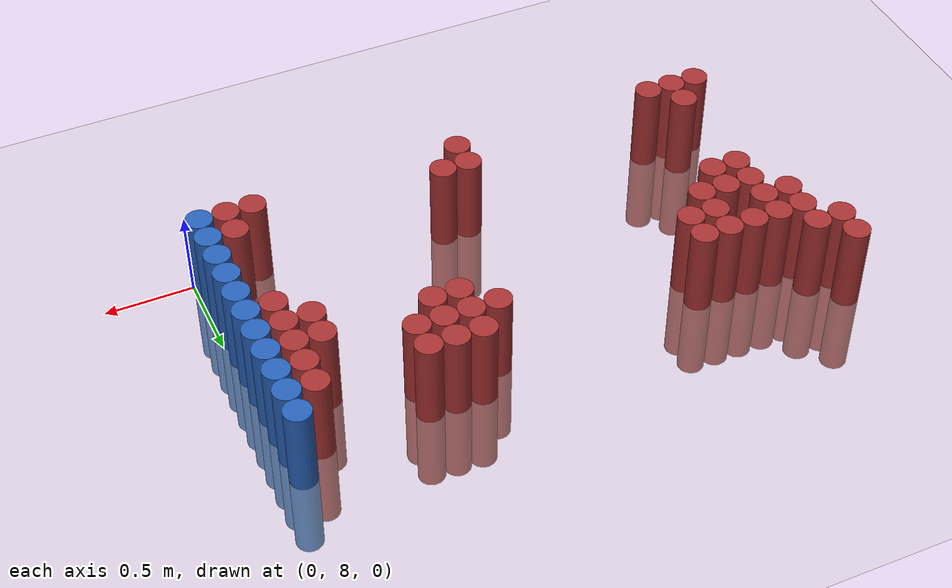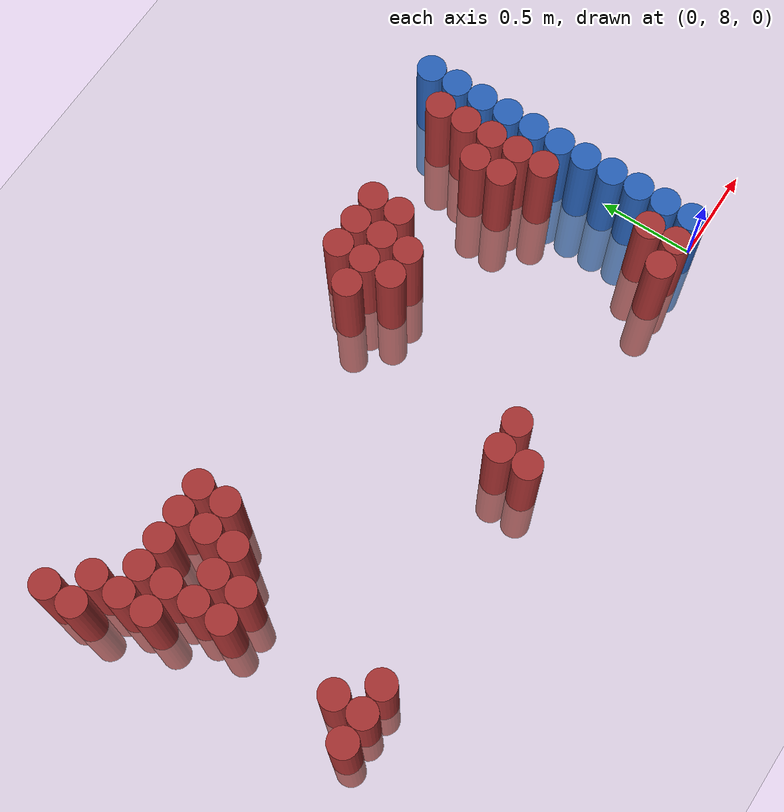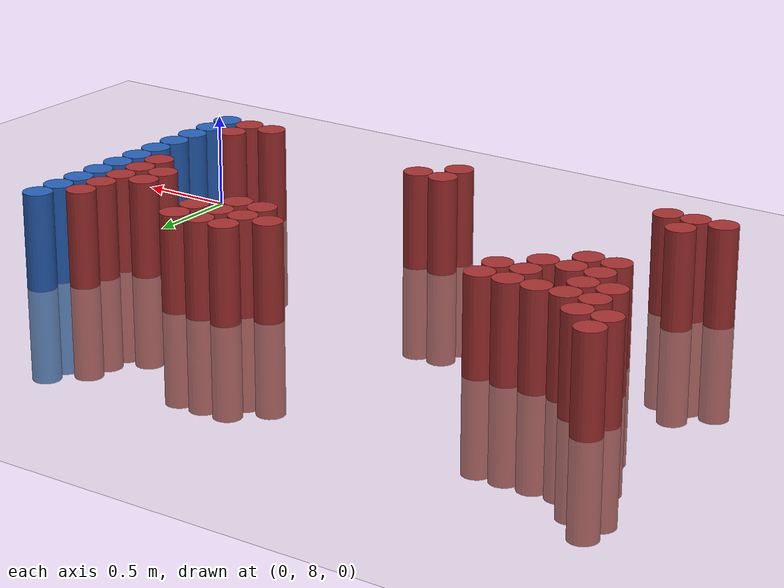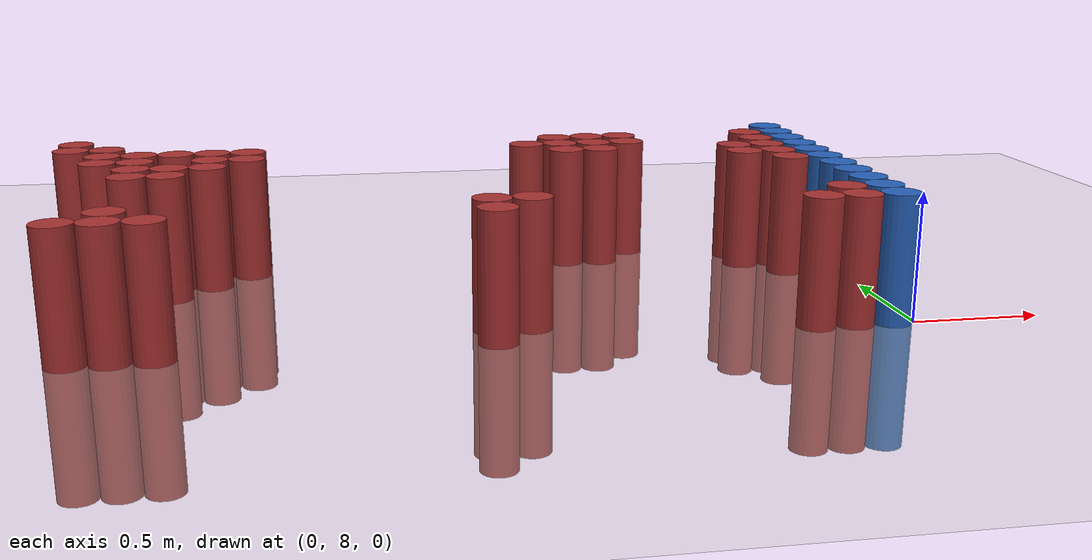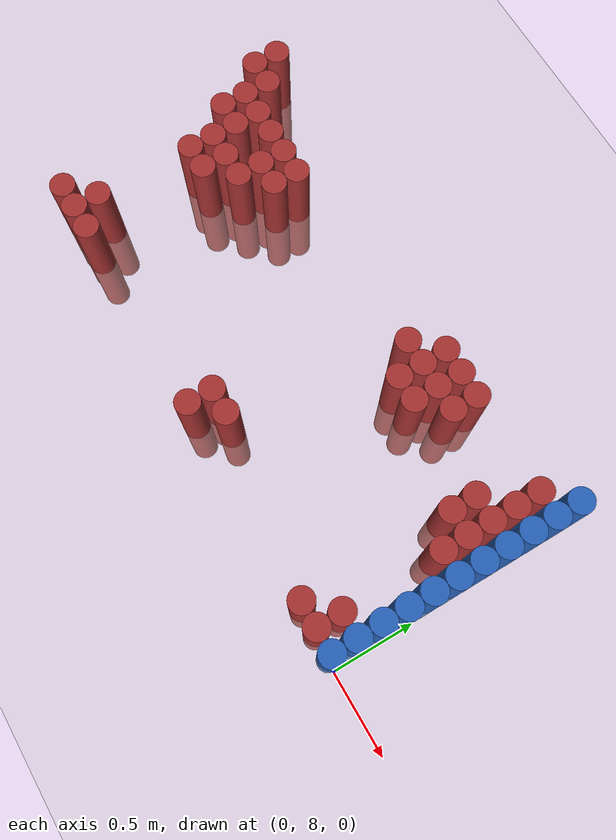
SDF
<sdf version="1.6">
 <world name="default">
  <model name="ground_plane">
   <static>1</static>
   <link name="link">
    <collision name="collision">
     <geometry><plane><normal>0 0 1</normal><size>100 100</size></plane></geometry>
     <surface><friction><ode><mu>100</mu><mu2>50</mu2></ode></friction></surface>
    </collision>
    <visual name="visual">
     <cast_shadows>0</cast_shadows>
     <geometry><plane><normal>0 0 1</normal><size>100 100</size></plane></geometry>
     <material>
      <script><uri>file://media/materials/scripts/gazebo.material</uri><name>Gazebo/Grey</name></script>
     </material>
    </visual>
   </link>
  </model>
  <model name="unit_cylinder_183">
   <static>1</static>
   <pose>-3.225000 9.375000 0.000000 0.000000 0.000000 0.000000</pose>
   <link name="link">
    <inertial>
     <mass>1</mass>
     <inertia><ixx>0.145833</ixx><ixy>0</ixy><ixz>0</ixz><iyy>0.145833</iyy><iyz>0</iyz><izz>0.125</izz></inertia>
    </inertial>
    <collision name="collision">
     <geometry><cylinder><radius>0.075000</radius><length>1</length></cylinder></geometry>
    </collision>
    <visual name="visual">
     <geometry><cylinder><radius>0.075000</radius><length>1</length></cylinder></geometry>
     <material>
      <ambient>0.648000 0.192000 0.192000 1</ambient>
      <diffuse>0.648000 0.192000 0.192000 1</diffuse>
     </material>
     <material>
      <script><name>Gazebo/Grey</name><uri>file://media/materials/scripts/gazebo.material</uri></script>
     </material>
    </visual>
   </link>
  </model>
  <model name="unit_cylinder_184">
   <static>1</static>
   <pose>-3.225000 9.525000 0.000000 0.000000 0.000000 0.000000</pose>
   <link name="link">
    <inertial>
     <mass>1</mass>
     <inertia><ixx>0.145833</ixx><ixy>0</ixy><ixz>0</ixz><iyy>0.145833</iyy><iyz>0</iyz><izz>0.125</izz></inertia>
    </inertial>
    <collision name="collision">
     <geometry><cylinder><radius>0.075000</radius><length>1</length></cylinder></geometry>
    </collision>
    <visual name="visual">
     <geometry><cylinder><radius>0.075000</radius><length>1</length></cylinder></geometry>
     <material>
      <ambient>0.648000 0.192000 0.192000 1</ambient>
      <diffuse>0.648000 0.192000 0.192000 1</diffuse>
     </material>
     <material>
      <script><name>Gazebo/Grey</name><uri>file://media/materials/scripts/gazebo.material</uri></script>
     </material>
    </visual>
   </link>
  </model>
  <model name="unit_cylinder_186">
   <static>1</static>
   <pose>-3.075000 8.025000 0.000000 0.000000 0.000000 0.000000</pose>
   <link name="link">
    <inertial>
     <mass>1</mass>
     <inertia><ixx>0.145833</ixx><ixy>0</ixy><ixz>0</ixz><iyy>0.145833</iyy><iyz>0</iyz><izz>0.125</izz></inertia>
    </inertial>
    <collision name="collision">
     <geometry><cylinder><radius>0.075000</radius><length>1</length></cylinder></geometry>
    </collision>
    <visual name="visual">
     <geometry><cylinder><radius>0.075000</radius><length>1</length></cylinder></geometry>
     <material>
      <ambient>0.648000 0.192000 0.192000 1</ambient>
      <diffuse>0.648000 0.192000 0.192000 1</diffuse>
     </material>
     <material>
      <script><name>Gazebo/Grey</name><uri>file://media/materials/scripts/gazebo.material</uri></script>
     </material>
    </visual>
   </link>
  </model>
  <model name="unit_cylinder_187">
   <static>1</static>
   <pose>-3.075000 9.075000 0.000000 0.000000 0.000000 0.000000</pose>
   <link name="link">
    <inertial>
     <mass>1</mass>
     <inertia><ixx>0.145833</ixx><ixy>0</ixy><ixz>0</ixz><iyy>0.145833</iyy><iyz>0</iyz><izz>0.125</izz></inertia>
    </inertial>
    <collision name="collision">
     <geometry><cylinder><radius>0.075000</radius><length>1</length></cylinder></geometry>
    </collision>
    <visual name="visual">
     <geometry><cylinder><radius>0.075000</radius><length>1</length></cylinder></geometry>
     <material>
      <ambient>0.648000 0.192000 0.192000 1</ambient>
      <diffuse>0.648000 0.192000 0.192000 1</diffuse>
     </material>
     <material>
      <script><name>Gazebo/Grey</name><uri>file://media/materials/scripts/gazebo.material</uri></script>
     </material>
    </visual>
   </link>
  </model>
  <model name="unit_cylinder_188">
   <static>1</static>
   <pose>-3.075000 9.225000 0.000000 0.000000 0.000000 0.000000</pose>
   <link name="link">
    <inertial>
     <mass>1</mass>
     <inertia><ixx>0.145833</ixx><ixy>0</ixy><ixz>0</ixz><iyy>0.145833</iyy><iyz>0</iyz><izz>0.125</izz></inertia>
    </inertial>
    <collision name="collision">
     <geometry><cylinder><radius>0.075000</radius><length>1</length></cylinder></geometry>
    </collision>
    <visual name="visual">
     <geometry><cylinder><radius>0.075000</radius><length>1</length></cylinder></geometry>
     <material>
      <ambient>0.648000 0.192000 0.192000 1</ambient>
      <diffuse>0.648000 0.192000 0.192000 1</diffuse>
     </material>
     <material>
      <script><name>Gazebo/Grey</name><uri>file://media/materials/scripts/gazebo.material</uri></script>
     </material>
    </visual>
   </link>
  </model>
  <model name="unit_cylinder_189">
   <static>1</static>
   <pose>-3.075000 9.375000 0.000000 0.000000 0.000000 0.000000</pose>
   <link name="link">
    <inertial>
     <mass>1</mass>
     <inertia><ixx>0.145833</ixx><ixy>0</ixy><ixz>0</ixz><iyy>0.145833</iyy><iyz>0</iyz><izz>0.125</izz></inertia>
    </inertial>
    <collision name="collision">
     <geometry><cylinder><radius>0.075000</radius><length>1</length></cylinder></geometry>
    </collision>
    <visual name="visual">
     <geometry><cylinder><radius>0.075000</radius><length>1</length></cylinder></geometry>
     <material>
      <ambient>0.648000 0.192000 0.192000 1</ambient>
      <diffuse>0.648000 0.192000 0.192000 1</diffuse>
     </material>
     <material>
      <script><name>Gazebo/Grey</name><uri>file://media/materials/scripts/gazebo.material</uri></script>
     </material>
    </visual>
   </link>
  </model>
  <model name="unit_cylinder_191">
   <static>1</static>
   <pose>-2.925000 8.025000 0.000000 0.000000 0.000000 0.000000</pose>
   <link name="link">
    <inertial>
     <mass>1</mass>
     <inertia><ixx>0.145833</ixx><ixy>0</ixy><ixz>0</ixz><iyy>0.145833</iyy><iyz>0</iyz><izz>0.125</izz></inertia>
    </inertial>
    <collision name="collision">
     <geometry><cylinder><radius>0.075000</radius><length>1</length></cylinder></geometry>
    </collision>
    <visual name="visual">
     <geometry><cylinder><radius>0.075000</radius><length>1</length></cylinder></geometry>
     <material>
      <ambient>0.648000 0.192000 0.192000 1</ambient>
      <diffuse>0.648000 0.192000 0.192000 1</diffuse>
     </material>
     <material>
      <script><name>Gazebo/Grey</name><uri>file://media/materials/scripts/gazebo.material</uri></script>
     </material>
    </visual>
   </link>
  </model>
  <model name="unit_cylinder_192">
   <static>1</static>
   <pose>-2.925000 8.175000 0.000000 0.000000 0.000000 0.000000</pose>
   <link name="link">
    <inertial>
     <mass>1</mass>
     <inertia><ixx>0.145833</ixx><ixy>0</ixy><ixz>0</ixz><iyy>0.145833</iyy><iyz>0</iyz><izz>0.125</izz></inertia>
    </inertial>
    <collision name="collision">
     <geometry><cylinder><radius>0.075000</radius><length>1</length></cylinder></geometry>
    </collision>
    <visual name="visual">
     <geometry><cylinder><radius>0.075000</radius><length>1</length></cylinder></geometry>
     <material>
      <ambient>0.648000 0.192000 0.192000 1</ambient>
      <diffuse>0.648000 0.192000 0.192000 1</diffuse>
     </material>
     <material>
      <script><name>Gazebo/Grey</name><uri>file://media/materials/scripts/gazebo.material</uri></script>
     </material>
    </visual>
   </link>
  </model>
  <model name="unit_cylinder_193">
   <static>1</static>
   <pose>-2.925000 8.775000 0.000000 0.000000 0.000000 0.000000</pose>
   <link name="link">
    <inertial>
     <mass>1</mass>
     <inertia><ixx>0.145833</ixx><ixy>0</ixy><ixz>0</ixz><iyy>0.145833</iyy><iyz>0</iyz><izz>0.125</izz></inertia>
    </inertial>
    <collision name="collision">
     <geometry><cylinder><radius>0.075000</radius><length>1</length></cylinder></geometry>
    </collision>
    <visual name="visual">
     <geometry><cylinder><radius>0.075000</radius><length>1</length></cylinder></geometry>
     <material>
      <ambient>0.648000 0.192000 0.192000 1</ambient>
      <diffuse>0.648000 0.192000 0.192000 1</diffuse>
     </material>
     <material>
      <script><name>Gazebo/Grey</name><uri>file://media/materials/scripts/gazebo.material</uri></script>
     </material>
    </visual>
   </link>
  </model>
  <model name="unit_cylinder_194">
   <static>1</static>
   <pose>-2.925000 8.925000 0.000000 0.000000 0.000000 0.000000</pose>
   <link name="link">
    <inertial>
     <mass>1</mass>
     <inertia><ixx>0.145833</ixx><ixy>0</ixy><ixz>0</ixz><iyy>0.145833</iyy><iyz>0</iyz><izz>0.125</izz></inertia>
    </inertial>
    <collision name="collision">
     <geometry><cylinder><radius>0.075000</radius><length>1</length></cylinder></geometry>
    </collision>
    <visual name="visual">
     <geometry><cylinder><radius>0.075000</radius><length>1</length></cylinder></geometry>
     <material>
      <ambient>0.648000 0.192000 0.192000 1</ambient>
      <diffuse>0.648000 0.192000 0.192000 1</diffuse>
     </material>
     <material>
      <script><name>Gazebo/Grey</name><uri>file://media/materials/scripts/gazebo.material</uri></script>
     </material>
    </visual>
   </link>
  </model>
  <model name="unit_cylinder_195">
   <static>1</static>
   <pose>-2.925000 9.075000 0.000000 0.000000 0.000000 0.000000</pose>
   <link name="link">
    <inertial>
     <mass>1</mass>
     <inertia><ixx>0.145833</ixx><ixy>0</ixy><ixz>0</ixz><iyy>0.145833</iyy><iyz>0</iyz><izz>0.125</izz></inertia>
    </inertial>
    <collision name="collision">
     <geometry><cylinder><radius>0.075000</radius><length>1</length></cylinder></geometry>
    </collision>
    <visual name="visual">
     <geometry><cylinder><radius>0.075000</radius><length>1</length></cylinder></geometry>
     <material>
      <ambient>0.648000 0.192000 0.192000 1</ambient>
      <diffuse>0.648000 0.192000 0.192000 1</diffuse>
     </material>
     <material>
      <script><name>Gazebo/Grey</name><uri>file://media/materials/scripts/gazebo.material</uri></script>
     </material>
    </visual>
   </link>
  </model>
  <model name="unit_cylinder_196">
   <static>1</static>
   <pose>-2.925000 9.225000 0.000000 0.000000 0.000000 0.000000</pose>
   <link name="link">
    <inertial>
     <mass>1</mass>
     <inertia><ixx>0.145833</ixx><ixy>0</ixy><ixz>0</ixz><iyy>0.145833</iyy><iyz>0</iyz><izz>0.125</izz></inertia>
    </inertial>
    <collision name="collision">
     <geometry><cylinder><radius>0.075000</radius><length>1</length></cylinder></geometry>
    </collision>
    <visual name="visual">
     <geometry><cylinder><radius>0.075000</radius><length>1</length></cylinder></geometry>
     <material>
      <ambient>0.648000 0.192000 0.192000 1</ambient>
      <diffuse>0.648000 0.192000 0.192000 1</diffuse>
     </material>
     <material>
      <script><name>Gazebo/Grey</name><uri>file://media/materials/scripts/gazebo.material</uri></script>
     </material>
    </visual>
   </link>
  </model>
  <model name="unit_cylinder_197">
   <static>1</static>
   <pose>-2.775000 8.025000 0.000000 0.000000 0.000000 0.000000</pose>
   <link name="link">
    <inertial>
     <mass>1</mass>
     <inertia><ixx>0.145833</ixx><ixy>0</ixy><ixz>0</ixz><iyy>0.145833</iyy><iyz>0</iyz><izz>0.125</izz></inertia>
    </inertial>
    <collision name="collision">
     <geometry><cylinder><radius>0.075000</radius><length>1</length></cylinder></geometry>
    </collision>
    <visual name="visual">
     <geometry><cylinder><radius>0.075000</radius><length>1</length></cylinder></geometry>
     <material>
      <ambient>0.648000 0.192000 0.192000 1</ambient>
      <diffuse>0.648000 0.192000 0.192000 1</diffuse>
     </material>
     <material>
      <script><name>Gazebo/Grey</name><uri>file://media/materials/scripts/gazebo.material</uri></script>
     </material>
    </visual>
   </link>
  </model>
  <model name="unit_cylinder_198">
   <static>1</static>
   <pose>-2.775000 8.775000 0.000000 0.000000 0.000000 0.000000</pose>
   <link name="link">
    <inertial>
     <mass>1</mass>
     <inertia><ixx>0.145833</ixx><ixy>0</ixy><ixz>0</ixz><iyy>0.145833</iyy><iyz>0</iyz><izz>0.125</izz></inertia>
    </inertial>
    <collision name="collision">
     <geometry><cylinder><radius>0.075000</radius><length>1</length></cylinder></geometry>
    </collision>
    <visual name="visual">
     <geometry><cylinder><radius>0.075000</radius><length>1</length></cylinder></geometry>
     <material>
      <ambient>0.648000 0.192000 0.192000 1</ambient>
      <diffuse>0.648000 0.192000 0.192000 1</diffuse>
     </material>
     <material>
      <script><name>Gazebo/Grey</name><uri>file://media/materials/scripts/gazebo.material</uri></script>
     </material>
    </visual>
   </link>
  </model>
  <model name="unit_cylinder_199">
   <static>1</static>
   <pose>-2.775000 8.925000 0.000000 0.000000 0.000000 0.000000</pose>
   <link name="link">
    <inertial>
     <mass>1</mass>
     <inertia><ixx>0.145833</ixx><ixy>0</ixy><ixz>0</ixz><iyy>0.145833</iyy><iyz>0</iyz><izz>0.125</izz></inertia>
    </inertial>
    <collision name="collision">
     <geometry><cylinder><radius>0.075000</radius><length>1</length></cylinder></geometry>
    </collision>
    <visual name="visual">
     <geometry><cylinder><radius>0.075000</radius><length>1</length></cylinder></geometry>
     <material>
      <ambient>0.648000 0.192000 0.192000 1</ambient>
      <diffuse>0.648000 0.192000 0.192000 1</diffuse>
     </material>
     <material>
      <script><name>Gazebo/Grey</name><uri>file://media/materials/scripts/gazebo.material</uri></script>
     </material>
    </visual>
   </link>
  </model>
  <model name="unit_cylinder_200">
   <static>1</static>
   <pose>-2.775000 9.225000 0.000000 0.000000 0.000000 0.000000</pose>
   <link name="link">
    <inertial>
     <mass>1</mass>
     <inertia><ixx>0.145833</ixx><ixy>0</ixy><ixz>0</ixz><iyy>0.145833</iyy><iyz>0</iyz><izz>0.125</izz></inertia>
    </inertial>
    <collision name="collision">
     <geometry><cylinder><radius>0.075000</radius><length>1</length></cylinder></geometry>
    </collision>
    <visual name="visual">
     <geometry><cylinder><radius>0.075000</radius><length>1</length></cylinder></geometry>
     <material>
      <ambient>0.648000 0.192000 0.192000 1</ambient>
      <diffuse>0.648000 0.192000 0.192000 1</diffuse>
     </material>
     <material>
      <script><name>Gazebo/Grey</name><uri>file://media/materials/scripts/gazebo.material</uri></script>
     </material>
    </visual>
   </link>
  </model>
  <model name="unit_cylinder_201">
   <static>1</static>
   <pose>-2.625000 8.925000 0.000000 0.000000 0.000000 0.000000</pose>
   <link name="link">
    <inertial>
     <mass>1</mass>
     <inertia><ixx>0.145833</ixx><ixy>0</ixy><ixz>0</ixz><iyy>0.145833</iyy><iyz>0</iyz><izz>0.125</izz></inertia>
    </inertial>
    <collision name="collision">
     <geometry><cylinder><radius>0.075000</radius><length>1</length></cylinder></geometry>
    </collision>
    <visual name="visual">
     <geometry><cylinder><radius>0.075000</radius><length>1</length></cylinder></geometry>
     <material>
      <ambient>0.648000 0.192000 0.192000 1</ambient>
      <diffuse>0.648000 0.192000 0.192000 1</diffuse>
     </material>
     <material>
      <script><name>Gazebo/Grey</name><uri>file://media/materials/scripts/gazebo.material</uri></script>
     </material>
    </visual>
   </link>
  </model>
  <model name="unit_cylinder_202">
   <static>1</static>
   <pose>-2.625000 9.075000 0.000000 0.000000 0.000000 0.000000</pose>
   <link name="link">
    <inertial>
     <mass>1</mass>
     <inertia><ixx>0.145833</ixx><ixy>0</ixy><ixz>0</ixz><iyy>0.145833</iyy><iyz>0</iyz><izz>0.125</izz></inertia>
    </inertial>
    <collision name="collision">
     <geometry><cylinder><radius>0.075000</radius><length>1</length></cylinder></geometry>
    </collision>
    <visual name="visual">
     <geometry><cylinder><radius>0.075000</radius><length>1</length></cylinder></geometry>
     <material>
      <ambient>0.648000 0.192000 0.192000 1</ambient>
      <diffuse>0.648000 0.192000 0.192000 1</diffuse>
     </material>
     <material>
      <script><name>Gazebo/Grey</name><uri>file://media/materials/scripts/gazebo.material</uri></script>
     </material>
    </visual>
   </link>
  </model>
  <model name="unit_cylinder_203">
   <static>1</static>
   <pose>-2.625000 9.225000 0.000000 0.000000 0.000000 0.000000</pose>
   <link name="link">
    <inertial>
     <mass>1</mass>
     <inertia><ixx>0.145833</ixx><ixy>0</ixy><ixz>0</ixz><iyy>0.145833</iyy><iyz>0</iyz><izz>0.125</izz></inertia>
    </inertial>
    <collision name="collision">
     <geometry><cylinder><radius>0.075000</radius><length>1</length></cylinder></geometry>
    </collision>
    <visual name="visual">
     <geometry><cylinder><radius>0.075000</radius><length>1</length></cylinder></geometry>
     <material>
      <ambient>0.648000 0.192000 0.192000 1</ambient>
      <diffuse>0.648000 0.192000 0.192000 1</diffuse>
     </material>
     <material>
      <script><name>Gazebo/Grey</name><uri>file://media/materials/scripts/gazebo.material</uri></script>
     </material>
    </visual>
   </link>
  </model>
  <model name="unit_cylinder_204">
   <static>1</static>
   <pose>-2.475000 9.075000 0.000000 0.000000 0.000000 0.000000</pose>
   <link name="link">
    <inertial>
     <mass>1</mass>
     <inertia><ixx>0.145833</ixx><ixy>0</ixy><ixz>0</ixz><iyy>0.145833</iyy><iyz>0</iyz><izz>0.125</izz></inertia>
    </inertial>
    <collision name="collision">
     <geometry><cylinder><radius>0.075000</radius><length>1</length></cylinder></geometry>
    </collision>
    <visual name="visual">
     <geometry><cylinder><radius>0.075000</radius><length>1</length></cylinder></geometry>
     <material>
      <ambient>0.648000 0.192000 0.192000 1</ambient>
      <diffuse>0.648000 0.192000 0.192000 1</diffuse>
     </material>
     <material>
      <script><name>Gazebo/Grey</name><uri>file://media/materials/scripts/gazebo.material</uri></script>
     </material>
    </visual>
   </link>
  </model>
  <model name="unit_cylinder_205">
   <static>1</static>
   <pose>-2.475000 9.225000 0.000000 0.000000 0.000000 0.000000</pose>
   <link name="link">
    <inertial>
     <mass>1</mass>
     <inertia><ixx>0.145833</ixx><ixy>0</ixy><ixz>0</ixz><iyy>0.145833</iyy><iyz>0</iyz><izz>0.125</izz></inertia>
    </inertial>
    <collision name="collision">
     <geometry><cylinder><radius>0.075000</radius><length>1</length></cylinder></geometry>
    </collision>
    <visual name="visual">
     <geometry><cylinder><radius>0.075000</radius><length>1</length></cylinder></geometry>
     <material>
      <ambient>0.648000 0.192000 0.192000 1</ambient>
      <diffuse>0.648000 0.192000 0.192000 1</diffuse>
     </material>
     <material>
      <script><name>Gazebo/Grey</name><uri>file://media/materials/scripts/gazebo.material</uri></script>
     </material>
    </visual>
   </link>
  </model>
  <model name="unit_cylinder_227">
   <static>1</static>
   <pose>-1.575000 8.025000 0.000000 0.000000 0.000000 0.000000</pose>
   <link name="link">
    <inertial>
     <mass>1</mass>
     <inertia><ixx>0.145833</ixx><ixy>0</ixy><ixz>0</ixz><iyy>0.145833</iyy><iyz>0</iyz><izz>0.125</izz></inertia>
    </inertial>
    <collision name="collision">
     <geometry><cylinder><radius>0.075000</radius><length>1</length></cylinder></geometry>
    </collision>
    <visual name="visual">
     <geometry><cylinder><radius>0.075000</radius><length>1</length></cylinder></geometry>
     <material>
      <ambient>0.648000 0.192000 0.192000 1</ambient>
      <diffuse>0.648000 0.192000 0.192000 1</diffuse>
     </material>
     <material>
      <script><name>Gazebo/Grey</name><uri>file://media/materials/scripts/gazebo.material</uri></script>
     </material>
    </visual>
   </link>
  </model>
  <model name="unit_cylinder_228">
   <static>1</static>
   <pose>-1.575000 8.175000 0.000000 0.000000 0.000000 0.000000</pose>
   <link name="link">
    <inertial>
     <mass>1</mass>
     <inertia><ixx>0.145833</ixx><ixy>0</ixy><ixz>0</ixz><iyy>0.145833</iyy><iyz>0</iyz><izz>0.125</izz></inertia>
    </inertial>
    <collision name="collision">
     <geometry><cylinder><radius>0.075000</radius><length>1</length></cylinder></geometry>
    </collision>
    <visual name="visual">
     <geometry><cylinder><radius>0.075000</radius><length>1</length></cylinder></geometry>
     <material>
      <ambient>0.648000 0.192000 0.192000 1</ambient>
      <diffuse>0.648000 0.192000 0.192000 1</diffuse>
     </material>
     <material>
      <script><name>Gazebo/Grey</name><uri>file://media/materials/scripts/gazebo.material</uri></script>
     </material>
    </visual>
   </link>
  </model>
  <model name="unit_cylinder_232">
   <static>1</static>
   <pose>-1.425000 8.175000 0.000000 0.000000 0.000000 0.000000</pose>
   <link name="link">
    <inertial>
     <mass>1</mass>
     <inertia><ixx>0.145833</ixx><ixy>0</ixy><ixz>0</ixz><iyy>0.145833</iyy><iyz>0</iyz><izz>0.125</izz></inertia>
    </inertial>
    <collision name="collision">
     <geometry><cylinder><radius>0.075000</radius><length>1</length></cylinder></geometry>
    </collision>
    <visual name="visual">
     <geometry><cylinder><radius>0.075000</radius><length>1</length></cylinder></geometry>
     <material>
      <ambient>0.648000 0.192000 0.192000 1</ambient>
      <diffuse>0.648000 0.192000 0.192000 1</diffuse>
     </material>
     <material>
      <script><name>Gazebo/Grey</name><uri>file://media/materials/scripts/gazebo.material</uri></script>
     </material>
    </visual>
   </link>
  </model>
  <model name="unit_cylinder_236">
   <static>1</static>
   <pose>-1.275000 9.225000 0.000000 0.000000 0.000000 0.000000</pose>
   <link name="link">
    <inertial>
     <mass>1</mass>
     <inertia><ixx>0.145833</ixx><ixy>0</ixy><ixz>0</ixz><iyy>0.145833</iyy><iyz>0</iyz><izz>0.125</izz></inertia>
    </inertial>
    <collision name="collision">
     <geometry><cylinder><radius>0.075000</radius><length>1</length></cylinder></geometry>
    </collision>
    <visual name="visual">
     <geometry><cylinder><radius>0.075000</radius><length>1</length></cylinder></geometry>
     <material>
      <ambient>0.648000 0.192000 0.192000 1</ambient>
      <diffuse>0.648000 0.192000 0.192000 1</diffuse>
     </material>
     <material>
      <script><name>Gazebo/Grey</name><uri>file://media/materials/scripts/gazebo.material</uri></script>
     </material>
    </visual>
   </link>
  </model>
  <model name="unit_cylinder_242">
   <static>1</static>
   <pose>-1.125000 9.075000 0.000000 0.000000 0.000000 0.000000</pose>
   <link name="link">
    <inertial>
     <mass>1</mass>
     <inertia><ixx>0.145833</ixx><ixy>0</ixy><ixz>0</ixz><iyy>0.145833</iyy><iyz>0</iyz><izz>0.125</izz></inertia>
    </inertial>
    <collision name="collision">
     <geometry><cylinder><radius>0.075000</radius><length>1</length></cylinder></geometry>
    </collision>
    <visual name="visual">
     <geometry><cylinder><radius>0.075000</radius><length>1</length></cylinder></geometry>
     <material>
      <ambient>0.648000 0.192000 0.192000 1</ambient>
      <diffuse>0.648000 0.192000 0.192000 1</diffuse>
     </material>
     <material>
      <script><name>Gazebo/Grey</name><uri>file://media/materials/scripts/gazebo.material</uri></script>
     </material>
    </visual>
   </link>
  </model>
  <model name="unit_cylinder_243">
   <static>1</static>
   <pose>-1.125000 9.225000 0.000000 0.000000 0.000000 0.000000</pose>
   <link name="link">
    <inertial>
     <mass>1</mass>
     <inertia><ixx>0.145833</ixx><ixy>0</ixy><ixz>0</ixz><iyy>0.145833</iyy><iyz>0</iyz><izz>0.125</izz></inertia>
    </inertial>
    <collision name="collision">
     <geometry><cylinder><radius>0.075000</radius><length>1</length></cylinder></geometry>
    </collision>
    <visual name="visual">
     <geometry><cylinder><radius>0.075000</radius><length>1</length></cylinder></geometry>
     <material>
      <ambient>0.648000 0.192000 0.192000 1</ambient>
      <diffuse>0.648000 0.192000 0.192000 1</diffuse>
     </material>
     <material>
      <script><name>Gazebo/Grey</name><uri>file://media/materials/scripts/gazebo.material</uri></script>
     </material>
    </visual>
   </link>
  </model>
  <model name="unit_cylinder_244">
   <static>1</static>
   <pose>-1.125000 9.375000 0.000000 0.000000 0.000000 0.000000</pose>
   <link name="link">
    <inertial>
     <mass>1</mass>
     <inertia><ixx>0.145833</ixx><ixy>0</ixy><ixz>0</ixz><iyy>0.145833</iyy><iyz>0</iyz><izz>0.125</izz></inertia>
    </inertial>
    <collision name="collision">
     <geometry><cylinder><radius>0.075000</radius><length>1</length></cylinder></geometry>
    </collision>
    <visual name="visual">
     <geometry><cylinder><radius>0.075000</radius><length>1</length></cylinder></geometry>
     <material>
      <ambient>0.648000 0.192000 0.192000 1</ambient>
      <diffuse>0.648000 0.192000 0.192000 1</diffuse>
     </material>
     <material>
      <script><name>Gazebo/Grey</name><uri>file://media/materials/scripts/gazebo.material</uri></script>
     </material>
    </visual>
   </link>
  </model>
  <model name="unit_cylinder_252">
   <static>1</static>
   <pose>-0.975000 9.075000 0.000000 0.000000 0.000000 0.000000</pose>
   <link name="link">
    <inertial>
     <mass>1</mass>
     <inertia><ixx>0.145833</ixx><ixy>0</ixy><ixz>0</ixz><iyy>0.145833</iyy><iyz>0</iyz><izz>0.125</izz></inertia>
    </inertial>
    <collision name="collision">
     <geometry><cylinder><radius>0.075000</radius><length>1</length></cylinder></geometry>
    </collision>
    <visual name="visual">
     <geometry><cylinder><radius>0.075000</radius><length>1</length></cylinder></geometry>
     <material>
      <ambient>0.648000 0.192000 0.192000 1</ambient>
      <diffuse>0.648000 0.192000 0.192000 1</diffuse>
     </material>
     <material>
      <script><name>Gazebo/Grey</name><uri>file://media/materials/scripts/gazebo.material</uri></script>
     </material>
    </visual>
   </link>
  </model>
  <model name="unit_cylinder_253">
   <static>1</static>
   <pose>-0.975000 9.225000 0.000000 0.000000 0.000000 0.000000</pose>
   <link name="link">
    <inertial>
     <mass>1</mass>
     <inertia><ixx>0.145833</ixx><ixy>0</ixy><ixz>0</ixz><iyy>0.145833</iyy><iyz>0</iyz><izz>0.125</izz></inertia>
    </inertial>
    <collision name="collision">
     <geometry><cylinder><radius>0.075000</radius><length>1</length></cylinder></geometry>
    </collision>
    <visual name="visual">
     <geometry><cylinder><radius>0.075000</radius><length>1</length></cylinder></geometry>
     <material>
      <ambient>0.648000 0.192000 0.192000 1</ambient>
      <diffuse>0.648000 0.192000 0.192000 1</diffuse>
     </material>
     <material>
      <script><name>Gazebo/Grey</name><uri>file://media/materials/scripts/gazebo.material</uri></script>
     </material>
    </visual>
   </link>
  </model>
  <model name="unit_cylinder_254">
   <static>1</static>
   <pose>-0.975000 9.375000 0.000000 0.000000 0.000000 0.000000</pose>
   <link name="link">
    <inertial>
     <mass>1</mass>
     <inertia><ixx>0.145833</ixx><ixy>0</ixy><ixz>0</ixz><iyy>0.145833</iyy><iyz>0</iyz><izz>0.125</izz></inertia>
    </inertial>
    <collision name="collision">
     <geometry><cylinder><radius>0.075000</radius><length>1</length></cylinder></geometry>
    </collision>
    <visual name="visual">
     <geometry><cylinder><radius>0.075000</radius><length>1</length></cylinder></geometry>
     <material>
      <ambient>0.648000 0.192000 0.192000 1</ambient>
      <diffuse>0.648000 0.192000 0.192000 1</diffuse>
     </material>
     <material>
      <script><name>Gazebo/Grey</name><uri>file://media/materials/scripts/gazebo.material</uri></script>
     </material>
    </visual>
   </link>
  </model>
  <model name="unit_cylinder_259">
   <static>1</static>
   <pose>-0.825000 9.225000 0.000000 0.000000 0.000000 0.000000</pose>
   <link name="link">
    <inertial>
     <mass>1</mass>
     <inertia><ixx>0.145833</ixx><ixy>0</ixy><ixz>0</ixz><iyy>0.145833</iyy><iyz>0</iyz><izz>0.125</izz></inertia>
    </inertial>
    <collision name="collision">
     <geometry><cylinder><radius>0.075000</radius><length>1</length></cylinder></geometry>
    </collision>
    <visual name="visual">
     <geometry><cylinder><radius>0.075000</radius><length>1</length></cylinder></geometry>
     <material>
      <ambient>0.648000 0.192000 0.192000 1</ambient>
      <diffuse>0.648000 0.192000 0.192000 1</diffuse>
     </material>
     <material>
      <script><name>Gazebo/Grey</name><uri>file://media/materials/scripts/gazebo.material</uri></script>
     </material>
    </visual>
   </link>
  </model>
  <model name="unit_cylinder_260">
   <static>1</static>
   <pose>-0.825000 9.375000 0.000000 0.000000 0.000000 0.000000</pose>
   <link name="link">
    <inertial>
     <mass>1</mass>
     <inertia><ixx>0.145833</ixx><ixy>0</ixy><ixz>0</ixz><iyy>0.145833</iyy><iyz>0</iyz><izz>0.125</izz></inertia>
    </inertial>
    <collision name="collision">
     <geometry><cylinder><radius>0.075000</radius><length>1</length></cylinder></geometry>
    </collision>
    <visual name="visual">
     <geometry><cylinder><radius>0.075000</radius><length>1</length></cylinder></geometry>
     <material>
      <ambient>0.648000 0.192000 0.192000 1</ambient>
      <diffuse>0.648000 0.192000 0.192000 1</diffuse>
     </material>
     <material>
      <script><name>Gazebo/Grey</name><uri>file://media/materials/scripts/gazebo.material</uri></script>
     </material>
    </visual>
   </link>
  </model>
  <model name="unit_cylinder_270">
   <static>1</static>
   <pose>-0.375000 8.025000 0.000000 0.000000 0.000000 0.000000</pose>
   <link name="link">
    <inertial>
     <mass>1</mass>
     <inertia><ixx>0.145833</ixx><ixy>0</ixy><ixz>0</ixz><iyy>0.145833</iyy><iyz>0</iyz><izz>0.125</izz></inertia>
    </inertial>
    <collision name="collision">
     <geometry><cylinder><radius>0.075000</radius><length>1</length></cylinder></geometry>
    </collision>
    <visual name="visual">
     <geometry><cylinder><radius>0.075000</radius><length>1</length></cylinder></geometry>
     <material>
      <ambient>0.648000 0.192000 0.192000 1</ambient>
      <diffuse>0.648000 0.192000 0.192000 1</diffuse>
     </material>
     <material>
      <script><name>Gazebo/Grey</name><uri>file://media/materials/scripts/gazebo.material</uri></script>
     </material>
    </visual>
   </link>
  </model>
  <model name="unit_cylinder_271">
   <static>1</static>
   <pose>-0.375000 8.925000 0.000000 0.000000 0.000000 0.000000</pose>
   <link name="link">
    <inertial>
     <mass>1</mass>
     <inertia><ixx>0.145833</ixx><ixy>0</ixy><ixz>0</ixz><iyy>0.145833</iyy><iyz>0</iyz><izz>0.125</izz></inertia>
    </inertial>
    <collision name="collision">
     <geometry><cylinder><radius>0.075000</radius><length>1</length></cylinder></geometry>
    </collision>
    <visual name="visual">
     <geometry><cylinder><radius>0.075000</radius><length>1</length></cylinder></geometry>
     <material>
      <ambient>0.648000 0.192000 0.192000 1</ambient>
      <diffuse>0.648000 0.192000 0.192000 1</diffuse>
     </material>
     <material>
      <script><name>Gazebo/Grey</name><uri>file://media/materials/scripts/gazebo.material</uri></script>
     </material>
    </visual>
   </link>
  </model>
  <model name="unit_cylinder_272">
   <static>1</static>
   <pose>-0.375000 9.075000 0.000000 0.000000 0.000000 0.000000</pose>
   <link name="link">
    <inertial>
     <mass>1</mass>
     <inertia><ixx>0.145833</ixx><ixy>0</ixy><ixz>0</ixz><iyy>0.145833</iyy><iyz>0</iyz><izz>0.125</izz></inertia>
    </inertial>
    <collision name="collision">
     <geometry><cylinder><radius>0.075000</radius><length>1</length></cylinder></geometry>
    </collision>
    <visual name="visual">
     <geometry><cylinder><radius>0.075000</radius><length>1</length></cylinder></geometry>
     <material>
      <ambient>0.648000 0.192000 0.192000 1</ambient>
      <diffuse>0.648000 0.192000 0.192000 1</diffuse>
     </material>
     <material>
      <script><name>Gazebo/Grey</name><uri>file://media/materials/scripts/gazebo.material</uri></script>
     </material>
    </visual>
   </link>
  </model>
  <model name="unit_cylinder_284">
   <static>1</static>
   <pose>-0.225000 8.025000 0.000000 0.000000 0.000000 0.000000</pose>
   <link name="link">
    <inertial>
     <mass>1</mass>
     <inertia><ixx>0.145833</ixx><ixy>0</ixy><ixz>0</ixz><iyy>0.145833</iyy><iyz>0</iyz><izz>0.125</izz></inertia>
    </inertial>
    <collision name="collision">
     <geometry><cylinder><radius>0.075000</radius><length>1</length></cylinder></geometry>
    </collision>
    <visual name="visual">
     <geometry><cylinder><radius>0.075000</radius><length>1</length></cylinder></geometry>
     <material>
      <ambient>0.648000 0.192000 0.192000 1</ambient>
      <diffuse>0.648000 0.192000 0.192000 1</diffuse>
     </material>
     <material>
      <script><name>Gazebo/Grey</name><uri>file://media/materials/scripts/gazebo.material</uri></script>
     </material>
    </visual>
   </link>
  </model>
  <model name="unit_cylinder_285">
   <static>1</static>
   <pose>-0.225000 8.175000 0.000000 0.000000 0.000000 0.000000</pose>
   <link name="link">
    <inertial>
     <mass>1</mass>
     <inertia><ixx>0.145833</ixx><ixy>0</ixy><ixz>0</ixz><iyy>0.145833</iyy><iyz>0</iyz><izz>0.125</izz></inertia>
    </inertial>
    <collision name="collision">
     <geometry><cylinder><radius>0.075000</radius><length>1</length></cylinder></geometry>
    </collision>
    <visual name="visual">
     <geometry><cylinder><radius>0.075000</radius><length>1</length></cylinder></geometry>
     <material>
      <ambient>0.648000 0.192000 0.192000 1</ambient>
      <diffuse>0.648000 0.192000 0.192000 1</diffuse>
     </material>
     <material>
      <script><name>Gazebo/Grey</name><uri>file://media/materials/scripts/gazebo.material</uri></script>
     </material>
    </visual>
   </link>
  </model>
  <model name="unit_cylinder_286">
   <static>1</static>
   <pose>-0.225000 8.775000 0.000000 0.000000 0.000000 0.000000</pose>
   <link name="link">
    <inertial>
     <mass>1</mass>
     <inertia><ixx>0.145833</ixx><ixy>0</ixy><ixz>0</ixz><iyy>0.145833</iyy><iyz>0</iyz><izz>0.125</izz></inertia>
    </inertial>
    <collision name="collision">
     <geometry><cylinder><radius>0.075000</radius><length>1</length></cylinder></geometry>
    </collision>
    <visual name="visual">
     <geometry><cylinder><radius>0.075000</radius><length>1</length></cylinder></geometry>
     <material>
      <ambient>0.648000 0.192000 0.192000 1</ambient>
      <diffuse>0.648000 0.192000 0.192000 1</diffuse>
     </material>
     <material>
      <script><name>Gazebo/Grey</name><uri>file://media/materials/scripts/gazebo.material</uri></script>
     </material>
    </visual>
   </link>
  </model>
  <model name="unit_cylinder_287">
   <static>1</static>
   <pose>-0.225000 8.925000 0.000000 0.000000 0.000000 0.000000</pose>
   <link name="link">
    <inertial>
     <mass>1</mass>
     <inertia><ixx>0.145833</ixx><ixy>0</ixy><ixz>0</ixz><iyy>0.145833</iyy><iyz>0</iyz><izz>0.125</izz></inertia>
    </inertial>
    <collision name="collision">
     <geometry><cylinder><radius>0.075000</radius><length>1</length></cylinder></geometry>
    </collision>
    <visual name="visual">
     <geometry><cylinder><radius>0.075000</radius><length>1</length></cylinder></geometry>
     <material>
      <ambient>0.648000 0.192000 0.192000 1</ambient>
      <diffuse>0.648000 0.192000 0.192000 1</diffuse>
     </material>
     <material>
      <script><name>Gazebo/Grey</name><uri>file://media/materials/scripts/gazebo.material</uri></script>
     </material>
    </visual>
   </link>
  </model>
  <model name="unit_cylinder_288">
   <static>1</static>
   <pose>-0.225000 9.075000 0.000000 0.000000 0.000000 0.000000</pose>
   <link name="link">
    <inertial>
     <mass>1</mass>
     <inertia><ixx>0.145833</ixx><ixy>0</ixy><ixz>0</ixz><iyy>0.145833</iyy><iyz>0</iyz><izz>0.125</izz></inertia>
    </inertial>
    <collision name="collision">
     <geometry><cylinder><radius>0.075000</radius><length>1</length></cylinder></geometry>
    </collision>
    <visual name="visual">
     <geometry><cylinder><radius>0.075000</radius><length>1</length></cylinder></geometry>
     <material>
      <ambient>0.648000 0.192000 0.192000 1</ambient>
      <diffuse>0.648000 0.192000 0.192000 1</diffuse>
     </material>
     <material>
      <script><name>Gazebo/Grey</name><uri>file://media/materials/scripts/gazebo.material</uri></script>
     </material>
    </visual>
   </link>
  </model>
  <model name="unit_cylinder_289">
   <static>1</static>
   <pose>-0.225000 9.225000 0.000000 0.000000 0.000000 0.000000</pose>
   <link name="link">
    <inertial>
     <mass>1</mass>
     <inertia><ixx>0.145833</ixx><ixy>0</ixy><ixz>0</ixz><iyy>0.145833</iyy><iyz>0</iyz><izz>0.125</izz></inertia>
    </inertial>
    <collision name="collision">
     <geometry><cylinder><radius>0.075000</radius><length>1</length></cylinder></geometry>
    </collision>
    <visual name="visual">
     <geometry><cylinder><radius>0.075000</radius><length>1</length></cylinder></geometry>
     <material>
      <ambient>0.648000 0.192000 0.192000 1</ambient>
      <diffuse>0.648000 0.192000 0.192000 1</diffuse>
     </material>
     <material>
      <script><name>Gazebo/Grey</name><uri>file://media/materials/scripts/gazebo.material</uri></script>
     </material>
    </visual>
   </link>
  </model>
  <model name="unit_cylinder_290">
   <static>1</static>
   <pose>-0.225000 9.375000 0.000000 0.000000 0.000000 0.000000</pose>
   <link name="link">
    <inertial>
     <mass>1</mass>
     <inertia><ixx>0.145833</ixx><ixy>0</ixy><ixz>0</ixz><iyy>0.145833</iyy><iyz>0</iyz><izz>0.125</izz></inertia>
    </inertial>
    <collision name="collision">
     <geometry><cylinder><radius>0.075000</radius><length>1</length></cylinder></geometry>
    </collision>
    <visual name="visual">
     <geometry><cylinder><radius>0.075000</radius><length>1</length></cylinder></geometry>
     <material>
      <ambient>0.648000 0.192000 0.192000 1</ambient>
      <diffuse>0.648000 0.192000 0.192000 1</diffuse>
     </material>
     <material>
      <script><name>Gazebo/Grey</name><uri>file://media/materials/scripts/gazebo.material</uri></script>
     </material>
    </visual>
   </link>
  </model>
  <model name="unit_cylinder_310">
   <static>1</static>
   <pose>-0.075000 8.025000 0.000000 0.000000 0.000000 0.000000</pose>
   <link name="link">
    <inertial>
     <mass>1</mass>
     <inertia><ixx>0.145833</ixx><ixy>0</ixy><ixz>0</ixz><iyy>0.145833</iyy><iyz>0</iyz><izz>0.125</izz></inertia>
    </inertial>
    <collision name="collision">
     <geometry><cylinder><radius>0.075000</radius><length>1</length></cylinder></geometry>
    </collision>
    <visual name="visual">
     <geometry><cylinder><radius>0.075000</radius><length>1</length></cylinder></geometry>
     <material>
      <ambient>0.152000 0.379000 0.720000 1</ambient>
      <diffuse>0.152000 0.379000 0.720000 1</diffuse>
     </material>
     <material>
      <script><name>Gazebo/Grey</name><uri>file://media/materials/scripts/gazebo.material</uri></script>
     </material>
    </visual>
   </link>
  </model>
  <model name="unit_cylinder_311">
   <static>1</static>
   <pose>-0.075000 8.175000 0.000000 0.000000 0.000000 0.000000</pose>
   <link name="link">
    <inertial>
     <mass>1</mass>
     <inertia><ixx>0.145833</ixx><ixy>0</ixy><ixz>0</ixz><iyy>0.145833</iyy><iyz>0</iyz><izz>0.125</izz></inertia>
    </inertial>
    <collision name="collision">
     <geometry><cylinder><radius>0.075000</radius><length>1</length></cylinder></geometry>
    </collision>
    <visual name="visual">
     <geometry><cylinder><radius>0.075000</radius><length>1</length></cylinder></geometry>
     <material>
      <ambient>0.152000 0.379000 0.720000 1</ambient>
      <diffuse>0.152000 0.379000 0.720000 1</diffuse>
     </material>
     <material>
      <script><name>Gazebo/Grey</name><uri>file://media/materials/scripts/gazebo.material</uri></script>
     </material>
    </visual>
   </link>
  </model>
  <model name="unit_cylinder_312">
   <static>1</static>
   <pose>-0.075000 8.325000 0.000000 0.000000 0.000000 0.000000</pose>
   <link name="link">
    <inertial>
     <mass>1</mass>
     <inertia><ixx>0.145833</ixx><ixy>0</ixy><ixz>0</ixz><iyy>0.145833</iyy><iyz>0</iyz><izz>0.125</izz></inertia>
    </inertial>
    <collision name="collision">
     <geometry><cylinder><radius>0.075000</radius><length>1</length></cylinder></geometry>
    </collision>
    <visual name="visual">
     <geometry><cylinder><radius>0.075000</radius><length>1</length></cylinder></geometry>
     <material>
      <ambient>0.152000 0.379000 0.720000 1</ambient>
      <diffuse>0.152000 0.379000 0.720000 1</diffuse>
     </material>
     <material>
      <script><name>Gazebo/Grey</name><uri>file://media/materials/scripts/gazebo.material</uri></script>
     </material>
    </visual>
   </link>
  </model>
  <model name="unit_cylinder_313">
   <static>1</static>
   <pose>-0.075000 8.475000 0.000000 0.000000 0.000000 0.000000</pose>
   <link name="link">
    <inertial>
     <mass>1</mass>
     <inertia><ixx>0.145833</ixx><ixy>0</ixy><ixz>0</ixz><iyy>0.145833</iyy><iyz>0</iyz><izz>0.125</izz></inertia>
    </inertial>
    <collision name="collision">
     <geometry><cylinder><radius>0.075000</radius><length>1</length></cylinder></geometry>
    </collision>
    <visual name="visual">
     <geometry><cylinder><radius>0.075000</radius><length>1</length></cylinder></geometry>
     <material>
      <ambient>0.152000 0.379000 0.720000 1</ambient>
      <diffuse>0.152000 0.379000 0.720000 1</diffuse>
     </material>
     <material>
      <script><name>Gazebo/Grey</name><uri>file://media/materials/scripts/gazebo.material</uri></script>
     </material>
    </visual>
   </link>
  </model>
  <model name="unit_cylinder_314">
   <static>1</static>
   <pose>-0.075000 8.625000 0.000000 0.000000 0.000000 0.000000</pose>
   <link name="link">
    <inertial>
     <mass>1</mass>
     <inertia><ixx>0.145833</ixx><ixy>0</ixy><ixz>0</ixz><iyy>0.145833</iyy><iyz>0</iyz><izz>0.125</izz></inertia>
    </inertial>
    <collision name="collision">
     <geometry><cylinder><radius>0.075000</radius><length>1</length></cylinder></geometry>
    </collision>
    <visual name="visual">
     <geometry><cylinder><radius>0.075000</radius><length>1</length></cylinder></geometry>
     <material>
      <ambient>0.152000 0.379000 0.720000 1</ambient>
      <diffuse>0.152000 0.379000 0.720000 1</diffuse>
     </material>
     <material>
      <script><name>Gazebo/Grey</name><uri>file://media/materials/scripts/gazebo.material</uri></script>
     </material>
    </visual>
   </link>
  </model>
  <model name="unit_cylinder_315">
   <static>1</static>
   <pose>-0.075000 8.775000 0.000000 0.000000 0.000000 0.000000</pose>
   <link name="link">
    <inertial>
     <mass>1</mass>
     <inertia><ixx>0.145833</ixx><ixy>0</ixy><ixz>0</ixz><iyy>0.145833</iyy><iyz>0</iyz><izz>0.125</izz></inertia>
    </inertial>
    <collision name="collision">
     <geometry><cylinder><radius>0.075000</radius><length>1</length></cylinder></geometry>
    </collision>
    <visual name="visual">
     <geometry><cylinder><radius>0.075000</radius><length>1</length></cylinder></geometry>
     <material>
      <ambient>0.152000 0.379000 0.720000 1</ambient>
      <diffuse>0.152000 0.379000 0.720000 1</diffuse>
     </material>
     <material>
      <script><name>Gazebo/Grey</name><uri>file://media/materials/scripts/gazebo.material</uri></script>
     </material>
    </visual>
   </link>
  </model>
  <model name="unit_cylinder_316">
   <static>1</static>
   <pose>-0.075000 8.925000 0.000000 0.000000 0.000000 0.000000</pose>
   <link name="link">
    <inertial>
     <mass>1</mass>
     <inertia><ixx>0.145833</ixx><ixy>0</ixy><ixz>0</ixz><iyy>0.145833</iyy><iyz>0</iyz><izz>0.125</izz></inertia>
    </inertial>
    <collision name="collision">
     <geometry><cylinder><radius>0.075000</radius><length>1</length></cylinder></geometry>
    </collision>
    <visual name="visual">
     <geometry><cylinder><radius>0.075000</radius><length>1</length></cylinder></geometry>
     <material>
      <ambient>0.152000 0.379000 0.720000 1</ambient>
      <diffuse>0.152000 0.379000 0.720000 1</diffuse>
     </material>
     <material>
      <script><name>Gazebo/Grey</name><uri>file://media/materials/scripts/gazebo.material</uri></script>
     </material>
    </visual>
   </link>
  </model>
  <model name="unit_cylinder_317">
   <static>1</static>
   <pose>-0.075000 9.075000 0.000000 0.000000 0.000000 0.000000</pose>
   <link name="link">
    <inertial>
     <mass>1</mass>
     <inertia><ixx>0.145833</ixx><ixy>0</ixy><ixz>0</ixz><iyy>0.145833</iyy><iyz>0</iyz><izz>0.125</izz></inertia>
    </inertial>
    <collision name="collision">
     <geometry><cylinder><radius>0.075000</radius><length>1</length></cylinder></geometry>
    </collision>
    <visual name="visual">
     <geometry><cylinder><radius>0.075000</radius><length>1</length></cylinder></geometry>
     <material>
      <ambient>0.152000 0.379000 0.720000 1</ambient>
      <diffuse>0.152000 0.379000 0.720000 1</diffuse>
     </material>
     <material>
      <script><name>Gazebo/Grey</name><uri>file://media/materials/scripts/gazebo.material</uri></script>
     </material>
    </visual>
   </link>
  </model>
  <model name="unit_cylinder_318">
   <static>1</static>
   <pose>-0.075000 9.225000 0.000000 0.000000 0.000000 0.000000</pose>
   <link name="link">
    <inertial>
     <mass>1</mass>
     <inertia><ixx>0.145833</ixx><ixy>0</ixy><ixz>0</ixz><iyy>0.145833</iyy><iyz>0</iyz><izz>0.125</izz></inertia>
    </inertial>
    <collision name="collision">
     <geometry><cylinder><radius>0.075000</radius><length>1</length></cylinder></geometry>
    </collision>
    <visual name="visual">
     <geometry><cylinder><radius>0.075000</radius><length>1</length></cylinder></geometry>
     <material>
      <ambient>0.152000 0.379000 0.720000 1</ambient>
      <diffuse>0.152000 0.379000 0.720000 1</diffuse>
     </material>
     <material>
      <script><name>Gazebo/Grey</name><uri>file://media/materials/scripts/gazebo.material</uri></script>
     </material>
    </visual>
   </link>
  </model>
  <model name="unit_cylinder_319">
   <static>1</static>
   <pose>-0.075000 9.375000 0.000000 0.000000 0.000000 0.000000</pose>
   <link name="link">
    <inertial>
     <mass>1</mass>
     <inertia><ixx>0.145833</ixx><ixy>0</ixy><ixz>0</ixz><iyy>0.145833</iyy><iyz>0</iyz><izz>0.125</izz></inertia>
    </inertial>
    <collision name="collision">
     <geometry><cylinder><radius>0.075000</radius><length>1</length></cylinder></geometry>
    </collision>
    <visual name="visual">
     <geometry><cylinder><radius>0.075000</radius><length>1</length></cylinder></geometry>
     <material>
      <ambient>0.152000 0.379000 0.720000 1</ambient>
      <diffuse>0.152000 0.379000 0.720000 1</diffuse>
     </material>
     <material>
      <script><name>Gazebo/Grey</name><uri>file://media/materials/scripts/gazebo.material</uri></script>
     </material>
    </visual>
   </link>
  </model>
  <model name="unit_cylinder_320">
   <static>1</static>
   <pose>-0.075000 9.525000 0.000000 0.000000 0.000000 0.000000</pose>
   <link name="link">
    <inertial>
     <mass>1</mass>
     <inertia><ixx>0.145833</ixx><ixy>0</ixy><ixz>0</ixz><iyy>0.145833</iyy><iyz>0</iyz><izz>0.125</izz></inertia>
    </inertial>
    <collision name="collision">
     <geometry><cylinder><radius>0.075000</radius><length>1</length></cylinder></geometry>
    </collision>
    <visual name="visual">
     <geometry><cylinder><radius>0.075000</radius><length>1</length></cylinder></geometry>
     <material>
      <ambient>0.152000 0.379000 0.720000 1</ambient>
      <diffuse>0.152000 0.379000 0.720000 1</diffuse>
     </material>
     <material>
      <script><name>Gazebo/Grey</name><uri>file://media/materials/scripts/gazebo.material</uri></script>
     </material>
    </visual>
   </link>
  </model>
 </world>
</sdf>
